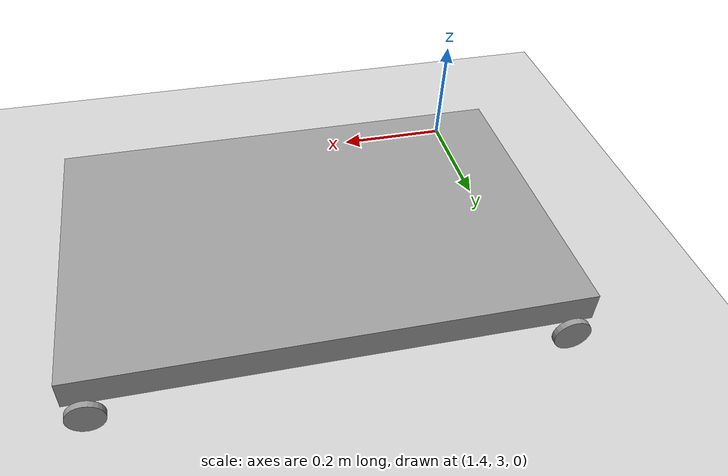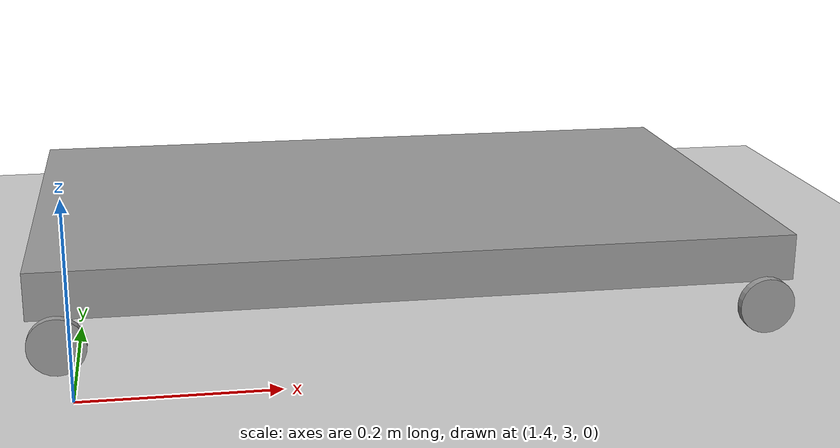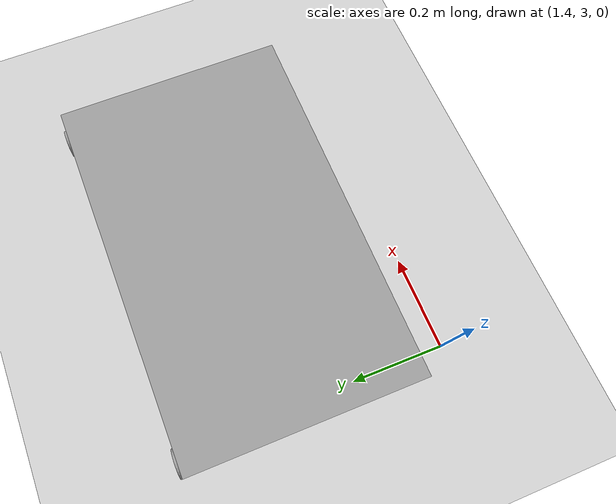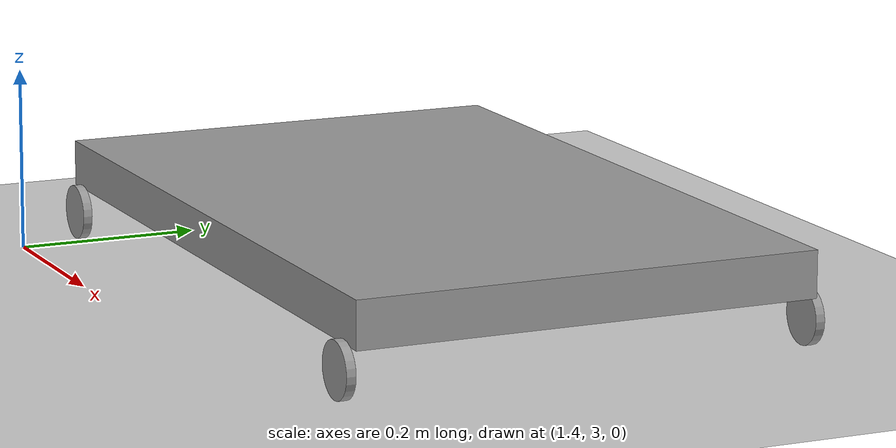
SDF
<sdf version="1.6">
 <world name="default">
  <model name="ground_plane">
   <static>1</static>
   <link name="link">
    <collision name="collision">
     <geometry><plane><normal>0 0 1</normal><size>100 100</size></plane></geometry>
     <surface><friction><ode><mu>100</mu><mu2>50</mu2></ode></friction></surface>
    </collision>
    <visual name="visual">
     <cast_shadows>0</cast_shadows>
     <geometry><plane><normal>0 0 1</normal><size>100 100</size></plane></geometry>
     <material>
      <script><uri>file://media/materials/scripts/gazebo.material</uri><name>Gazebo/Grey</name></script>
     </material>
    </visual>
   </link>
  </model>
  <model name="car_v1">
   <link name="link_0">
    <pose>0 0.000402 0.04 0 -0 0</pose>
    <inertial>
     <mass>1</mass>
     <inertia>
      <ixx>0.166667</ixx>
      <ixy>0</ixy>
      <ixz>0</ixz>
      <iyy>0.166667</iyy>
      <iyz>0</iyz>
      <izz>0.166667</izz>
     </inertia>
    </inertial>
    <visual name="visual">
     <geometry><box><size>0.8 0.5 0.05</size></box></geometry>
     <material>
      <lighting>1</lighting>
      <script><uri>file://media/materials/scripts/gazebo.material</uri><name>Gazebo/Grey</name></script>
      <ambient>0.3 0.3 0.3 1</ambient>
      <diffuse>0.7 0.7 0.7 1</diffuse>
      <specular>0.01 0.5 0.01 1</specular>
      <emissive>0 0 0 1</emissive>
      <shader type="vertex"><normal_map>__default__</normal_map></shader>
     </material>
    </visual>
    <collision name="collision">
     <geometry><box><size>0.8 0.5 0.05</size></box></geometry>
     <surface>
      <friction>
       <ode><mu>1</mu><mu2>1</mu2><fdir1>0 0 0</fdir1><slip1>0</slip1><slip2>0</slip2></ode>
       <torsional>
        <coefficient>1</coefficient>
        <patch_radius>0</patch_radius>
        <surface_radius>0</surface_radius>
        <use_patch_radius>1</use_patch_radius>
        <ode><slip>0</slip></ode>
       </torsional>
      </friction>
      <bounce><restitution_coefficient>0</restitution_coefficient><threshold>1e+06</threshold></bounce>
      <contact>
       <collide_without_contact>0</collide_without_contact>
       <collide_without_contact_bitmask>1</collide_without_contact_bitmask>
       <collide_bitmask>1</collide_bitmask>
       <ode>
        <soft_cfm>0</soft_cfm>
        <soft_erp>0.2</soft_erp>
        <kp>1e+13</kp>
        <kd>1</kd>
        <max_vel>0.01</max_vel>
        <min_depth>0</min_depth>
       </ode>
       <bullet>
        <split_impulse>1</split_impulse>
        <split_impulse_penetration_threshold>-0.01</split_impulse_penetration_threshold>
        <soft_cfm>0</soft_cfm>
        <soft_erp>0.2</soft_erp>
        <kp>1e+13</kp>
        <kd>1</kd>
       </bullet>
      </contact>
     </surface>
    </collision>
   </link>
   <link name="link_2">
    <pose>-0.37 -0.256611 -0.01 1.5707 -0 0</pose>
    <inertial>
     <mass>1</mass>
     <inertia><ixx>0.145833</ixx><ixy>0</ixy><ixz>0</ixz><iyy>0.145833</iyy><iyz>0</iyz><izz>0.125</izz></inertia>
    </inertial>
    <visual name="visual">
     <geometry><cylinder><radius>0.03</radius><length>0.01</length></cylinder></geometry>
     <material>
      <lighting>1</lighting>
      <script><uri>file://media/materials/scripts/gazebo.material</uri><name>Gazebo/Grey</name></script>
      <ambient>0.3 0.3 0.3 1</ambient>
      <diffuse>0.7 0.7 0.7 1</diffuse>
      <specular>0.01 0.01 0.01 1</specular>
      <emissive>0 0 0 1</emissive>
      <shader type="vertex"><normal_map>__default__</normal_map></shader>
     </material>
    </visual>
    <collision name="collision">
     <geometry><cylinder><radius>0.03</radius><length>0.01</length></cylinder></geometry>
     <surface>
      <friction>
       <ode><mu>1</mu><mu2>1</mu2><fdir1>0 0 0</fdir1><slip1>0</slip1><slip2>0</slip2></ode>
       <torsional>
        <coefficient>1</coefficient>
        <patch_radius>0</patch_radius>
        <surface_radius>0</surface_radius>
        <use_patch_radius>1</use_patch_radius>
        <ode><slip>0</slip></ode>
       </torsional>
      </friction>
      <bounce><restitution_coefficient>0</restitution_coefficient><threshold>1e+06</threshold></bounce>
      <contact>
       <collide_without_contact>0</collide_without_contact>
       <collide_without_contact_bitmask>1</collide_without_contact_bitmask>
       <collide_bitmask>1</collide_bitmask>
       <ode>
        <soft_cfm>0</soft_cfm>
        <soft_erp>0.2</soft_erp>
        <kp>1e+13</kp>
        <kd>1</kd>
        <max_vel>0.01</max_vel>
        <min_depth>0</min_depth>
       </ode>
       <bullet>
        <split_impulse>1</split_impulse>
        <split_impulse_penetration_threshold>-0.01</split_impulse_penetration_threshold>
        <soft_cfm>0</soft_cfm>
        <soft_erp>0.2</soft_erp>
        <kp>1e+13</kp>
        <kd>1</kd>
       </bullet>
      </contact>
     </surface>
    </collision>
   </link>
   <link name="link_2_clone">
    <pose>-0.37 0.255405 -0.01 1.5707 -0 0</pose>
    <inertial>
     <mass>1</mass>
     <inertia><ixx>0.145833</ixx><ixy>0</ixy><ixz>0</ixz><iyy>0.145833</iyy><iyz>0</iyz><izz>0.125</izz></inertia>
    </inertial>
    <visual name="visual">
     <geometry><cylinder><radius>0.03</radius><length>0.01</length></cylinder></geometry>
     <material>
      <lighting>1</lighting>
      <script><uri>file://media/materials/scripts/gazebo.material</uri><name>Gazebo/Grey</name></script>
      <ambient>0.3 0.3 0.3 1</ambient>
      <diffuse>0.7 0.7 0.7 1</diffuse>
      <specular>0.01 0.01 0.01 1</specular>
      <emissive>0 0 0 1</emissive>
      <shader type="vertex"><normal_map>__default__</normal_map></shader>
     </material>
    </visual>
    <collision name="collision">
     <geometry><cylinder><radius>0.03</radius><length>0.01</length></cylinder></geometry>
     <surface>
      <friction>
       <ode><mu>1</mu><mu2>1</mu2><fdir1>0 0 0</fdir1><slip1>0</slip1><slip2>0</slip2></ode>
       <torsional>
        <coefficient>1</coefficient>
        <patch_radius>0</patch_radius>
        <surface_radius>0</surface_radius>
        <use_patch_radius>1</use_patch_radius>
        <ode><slip>0</slip></ode>
       </torsional>
      </friction>
      <bounce><restitution_coefficient>0</restitution_coefficient><threshold>1e+06</threshold></bounce>
      <contact>
       <collide_without_contact>0</collide_without_contact>
       <collide_without_contact_bitmask>1</collide_without_contact_bitmask>
       <collide_bitmask>1</collide_bitmask>
       <ode>
        <soft_cfm>0</soft_cfm>
        <soft_erp>0.2</soft_erp>
        <kp>1e+13</kp>
        <kd>1</kd>
        <max_vel>0.01</max_vel>
        <min_depth>0</min_depth>
       </ode>
       <bullet>
        <split_impulse>1</split_impulse>
        <split_impulse_penetration_threshold>-0.01</split_impulse_penetration_threshold>
        <soft_cfm>0</soft_cfm>
        <soft_erp>0.2</soft_erp>
        <kp>1e+13</kp>
        <kd>1</kd>
       </bullet>
      </contact>
     </surface>
    </collision>
   </link>
   <link name="link_2_clone_0">
    <pose>0.37 -0.254601 -0.01 1.5707 -0 0</pose>
    <inertial>
     <mass>1</mass>
     <inertia><ixx>0.145833</ixx><ixy>0</ixy><ixz>0</ixz><iyy>0.145833</iyy><iyz>0</iyz><izz>0.125</izz></inertia>
    </inertial>
    <visual name="visual">
     <geometry><cylinder><radius>0.03</radius><length>0.01</length></cylinder></geometry>
     <material>
      <lighting>1</lighting>
      <script><uri>file://media/materials/scripts/gazebo.material</uri><name>Gazebo/Grey</name></script>
      <ambient>0.3 0.3 0.3 1</ambient>
      <diffuse>0.7 0.7 0.7 1</diffuse>
      <specular>0.01 0.01 0.01 1</specular>
      <emissive>0 0 0 1</emissive>
      <shader type="vertex"><normal_map>__default__</normal_map></shader>
     </material>
    </visual>
    <collision name="collision">
     <geometry><cylinder><radius>0.03</radius><length>0.01</length></cylinder></geometry>
     <surface>
      <friction>
       <ode><mu>1</mu><mu2>1</mu2><fdir1>0 0 0</fdir1><slip1>0</slip1><slip2>0</slip2></ode>
       <torsional>
        <coefficient>1</coefficient>
        <patch_radius>0</patch_radius>
        <surface_radius>0</surface_radius>
        <use_patch_radius>1</use_patch_radius>
        <ode><slip>0</slip></ode>
       </torsional>
      </friction>
      <bounce><restitution_coefficient>0</restitution_coefficient><threshold>1e+06</threshold></bounce>
      <contact>
       <collide_without_contact>0</collide_without_contact>
       <collide_without_contact_bitmask>1</collide_without_contact_bitmask>
       <collide_bitmask>1</collide_bitmask>
       <ode>
        <soft_cfm>0</soft_cfm>
        <soft_erp>0.2</soft_erp>
        <kp>1e+13</kp>
        <kd>1</kd>
        <max_vel>0.01</max_vel>
        <min_depth>0</min_depth>
       </ode>
       <bullet>
        <split_impulse>1</split_impulse>
        <split_impulse_penetration_threshold>-0.01</split_impulse_penetration_threshold>
        <soft_cfm>0</soft_cfm>
        <soft_erp>0.2</soft_erp>
        <kp>1e+13</kp>
        <kd>1</kd>
       </bullet>
      </contact>
     </surface>
    </collision>
   </link>
   <link name="link_2_clone_1">
    <pose>0.37 0.255405 -0.01 1.5707 -0 0</pose>
    <inertial>
     <mass>1</mass>
     <inertia><ixx>0.145833</ixx><ixy>0</ixy><ixz>0</ixz><iyy>0.145833</iyy><iyz>0</iyz><izz>0.125</izz></inertia>
    </inertial>
    <visual name="visual">
     <geometry><cylinder><radius>0.03</radius><length>0.01</length></cylinder></geometry>
     <material>
      <lighting>1</lighting>
      <script><uri>file://media/materials/scripts/gazebo.material</uri><name>Gazebo/Grey</name></script>
      <ambient>0.3 0.3 0.3 1</ambient>
      <diffuse>0.7 0.7 0.7 1</diffuse>
      <specular>0.01 0.01 0.01 1</specular>
      <emissive>0 0 0 1</emissive>
      <shader type="vertex"><normal_map>__default__</normal_map></shader>
     </material>
    </visual>
    <collision name="collision">
     <geometry><cylinder><radius>0.03</radius><length>0.01</length></cylinder></geometry>
     <surface>
      <friction>
       <ode><mu>1</mu><mu2>1</mu2><fdir1>0 0 0</fdir1><slip1>0</slip1><slip2>0</slip2></ode>
       <torsional>
        <coefficient>1</coefficient>
        <patch_radius>0</patch_radius>
        <surface_radius>0</surface_radius>
        <use_patch_radius>1</use_patch_radius>
        <ode><slip>0</slip></ode>
       </torsional>
      </friction>
      <bounce><restitution_coefficient>0</restitution_coefficient><threshold>1e+06</threshold></bounce>
      <contact>
       <collide_without_contact>0</collide_without_contact>
       <collide_without_contact_bitmask>1</collide_without_contact_bitmask>
       <collide_bitmask>1</collide_bitmask>
       <ode>
        <soft_cfm>0</soft_cfm>
        <soft_erp>0.2</soft_erp>
        <kp>1e+13</kp>
        <kd>1</kd>
        <max_vel>0.01</max_vel>
        <min_depth>0</min_depth>
       </ode>
       <bullet>
        <split_impulse>1</split_impulse>
        <split_impulse_penetration_threshold>-0.01</split_impulse_penetration_threshold>
        <soft_cfm>0</soft_cfm>
        <soft_erp>0.2</soft_erp>
        <kp>1e+13</kp>
        <kd>1</kd>
       </bullet>
      </contact>
     </surface>
    </collision>
   </link>
   <joint name="link_0_JOINT_0" type="universal">
    <parent>link_0</parent>
    <child>link_2</child>
    <axis>
     <xyz>1 0 0</xyz>
     <use_parent_model_frame>0</use_parent_model_frame>
     <limit>
      <lower>-1.79769e+308</lower>
      <upper>1.79769e+308</upper>
      <effort>-1</effort>
      <velocity>-1</velocity>
     </limit>
     <dynamics>
      <spring_reference>0</spring_reference>
      <spring_stiffness>0</spring_stiffness>
      <damping>0</damping>
      <friction>0</friction>
     </dynamics>
    </axis>
    <axis2>
     <xyz>0 1 0</xyz>
     <use_parent_model_frame>0</use_parent_model_frame>
     <dynamics>
      <spring_reference>0</spring_reference>
      <spring_stiffness>0</spring_stiffness>
      <damping>0</damping>
      <friction>0</friction>
     </dynamics>
     <limit>
      <lower>-1.79769e+308</lower>
      <upper>1.79769e+308</upper>
      <effort>-1</effort>
      <velocity>-1</velocity>
     </limit>
    </axis2>
    <physics>
     <ode><limit><cfm>0</cfm><erp>0.2</erp></limit><suspension><cfm>0</cfm><erp>0.2</erp></suspension></ode>
    </physics>
   </joint>
   <joint name="link_0_JOINT_1" type="universal">
    <parent>link_0</parent>
    <child>link_2_clone</child>
    <axis>
     <xyz>1 0 0</xyz>
     <use_parent_model_frame>0</use_parent_model_frame>
     <limit>
      <lower>-1.79769e+308</lower>
      <upper>1.79769e+308</upper>
      <effort>-1</effort>
      <velocity>-1</velocity>
     </limit>
     <dynamics>
      <spring_reference>0</spring_reference>
      <spring_stiffness>0</spring_stiffness>
      <damping>0</damping>
      <friction>0</friction>
     </dynamics>
    </axis>
    <axis2>
     <xyz>0 1 0</xyz>
     <use_parent_model_frame>0</use_parent_model_frame>
     <dynamics>
      <spring_reference>0</spring_reference>
      <spring_stiffness>0</spring_stiffness>
      <damping>0</damping>
      <friction>0</friction>
     </dynamics>
     <limit>
      <lower>-1.79769e+308</lower>
      <upper>1.79769e+308</upper>
      <effort>-1</effort>
      <velocity>-1</velocity>
     </limit>
    </axis2>
    <physics>
     <ode><limit><cfm>0</cfm><erp>0.2</erp></limit><suspension><cfm>0</cfm><erp>0.2</erp></suspension></ode>
    </physics>
   </joint>
   <joint name="link_0_JOINT_2" type="universal">
    <parent>link_0</parent>
    <child>link_2_clone_0</child>
    <axis>
     <xyz>1 0 0</xyz>
     <use_parent_model_frame>0</use_parent_model_frame>
     <limit>
      <lower>-1.79769e+308</lower>
      <upper>1.79769e+308</upper>
      <effort>-1</effort>
      <velocity>-1</velocity>
     </limit>
     <dynamics>
      <spring_reference>0</spring_reference>
      <spring_stiffness>0</spring_stiffness>
      <damping>0</damping>
      <friction>0</friction>
     </dynamics>
    </axis>
    <axis2>
     <xyz>0 1 0</xyz>
     <use_parent_model_frame>0</use_parent_model_frame>
     <dynamics>
      <spring_reference>0</spring_reference>
      <spring_stiffness>0</spring_stiffness>
      <damping>0</damping>
      <friction>0</friction>
     </dynamics>
     <limit>
      <lower>-1.79769e+308</lower>
      <upper>1.79769e+308</upper>
      <effort>-1</effort>
      <velocity>-1</velocity>
     </limit>
    </axis2>
    <physics>
     <ode><limit><cfm>0</cfm><erp>0.2</erp></limit><suspension><cfm>0</cfm><erp>0.2</erp></suspension></ode>
    </physics>
   </joint>
   <joint name="link_0_JOINT_3" type="revolute">
    <parent>link_0</parent>
    <child>link_2_clone_1</child>
    <axis>
     <xyz>1 0 0</xyz>
     <use_parent_model_frame>0</use_parent_model_frame>
     <limit>
      <lower>-1.79769e+308</lower>
      <upper>1.79769e+308</upper>
      <effort>-1</effort>
      <velocity>-1</velocity>
     </limit>
     <dynamics>
      <spring_reference>0</spring_reference>
      <spring_stiffness>0</spring_stiffness>
      <damping>0</damping>
      <friction>0</friction>
     </dynamics>
    </axis>
    <physics>
     <ode><limit><cfm>0</cfm><erp>0.2</erp></limit><suspension><cfm>0</cfm><erp>0.2</erp></suspension></ode>
    </physics>
   </joint>
   <static>0</static>
   <pose>1.75183 3.32862 0.04 0 -0 0.000179</pose>
  </model>
 </world>
</sdf>
